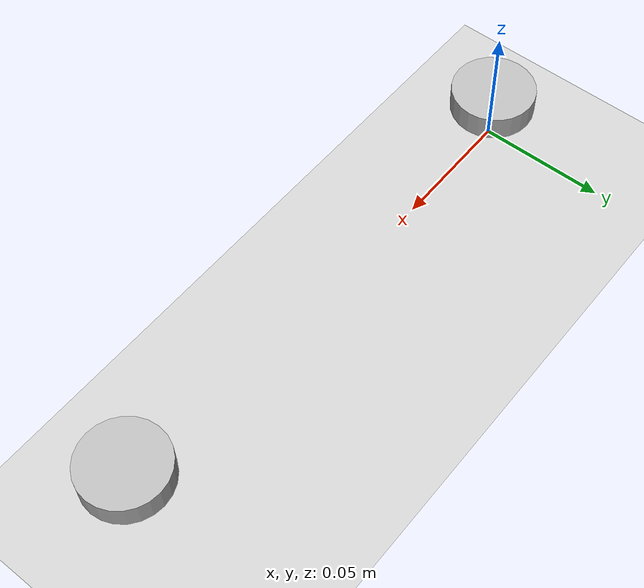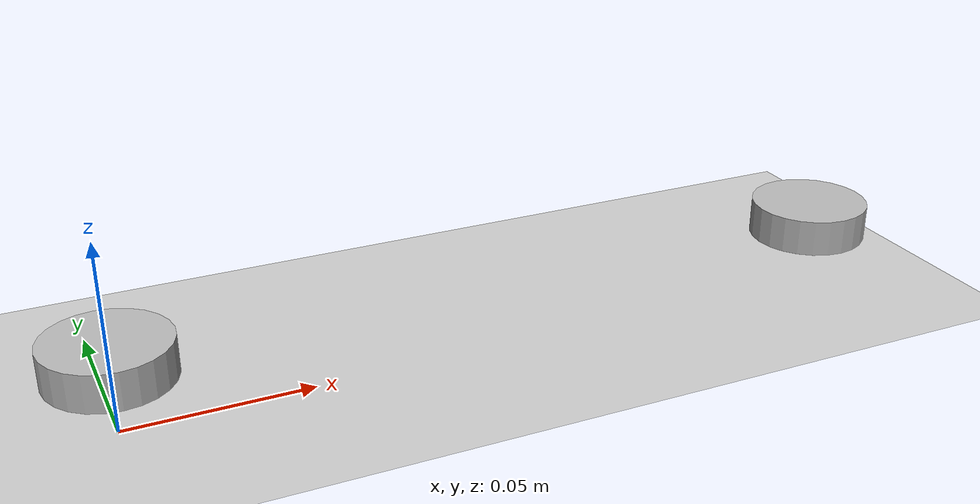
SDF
<?xml version="1.0"?>
<sdf version="1.6">
  <world name="default">
    <include>
      <uri>model://ground_plane</uri>
    </include>

    <include>
      <uri>model://sun</uri>
    </include>

    <include>
      <uri>model://CapacitiveSensor</uri>
      <name>lidar/0</name>
      <pose>-0.1 0 0 0 0 0</pose>
    </include>
    <include>
      <uri>model://CapacitiveSensor</uri>
      <name>lidar/1</name>
      <pose>0.1 0 0 0 0 0</pose>
    </include>
  </world>
</sdf>

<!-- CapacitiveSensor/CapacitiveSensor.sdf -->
<sdf version="1.6">
    <model name="lidar/0">
        <static>true</static>
        <link name="lidar_link">
            <pose>0.1 0 0.02 0 0 0</pose>
            <visual name="base_visual">
                <geometry>
                    <cylinder>
                        <radius>0.016285</radius>
                        <length>0.01</length>
                    </cylinder>
                </geometry>
            </visual>

            <sensor type="ray" name="sensor">
                <pose>0 0 -0.004645 0 0 0</pose>
                <visualize>true</visualize>
                <update_rate>2</update_rate>
                <ray>
                    <scan>
                        <vertical>
                            <samples>3</samples>
                            <resolution>1</resolution>
                            <min_angle>1.56079632679</min_angle>
                            <max_angle>1.58079632679</max_angle>
                        </vertical>
                        <horizontal>
                            <samples>1</samples>
                            <resolution>1</resolution>
                            <min_angle>0</min_angle>
                            <max_angle>-0.1</max_angle>
                        </horizontal>
                    </scan>
                    <range>
                        <min>0.001</min>
                        <max>0.1</max>
                        <resolution>0.0001</resolution>
                    </range>
                </ray>
                <plugin name="lidar_control" filename="libsim_lidar_plugin.so">
                    <lidardatatopicName>/sensor/lidar</lidardatatopicName>
                    <topicName>/sensor/lidar/scan</topicName>
                    <frameName>laser</frameName>
                </plugin>
            </sensor>
        </link>
    </model>
</sdf>
